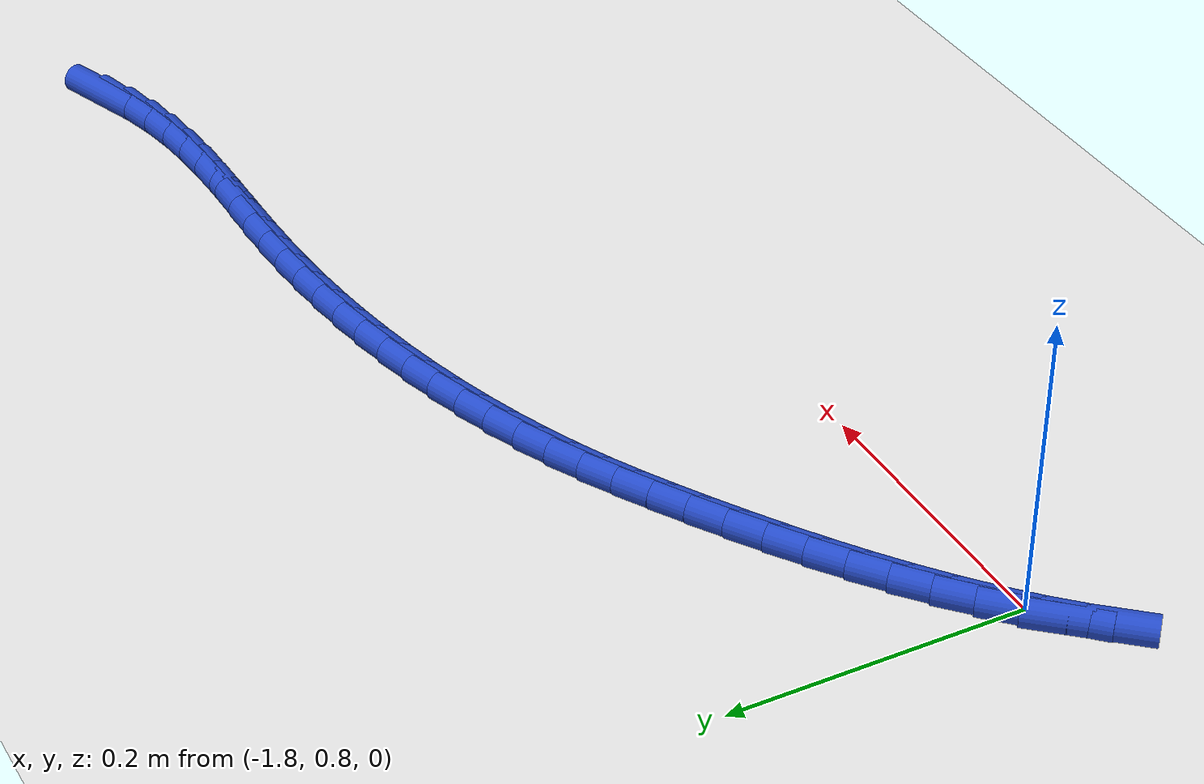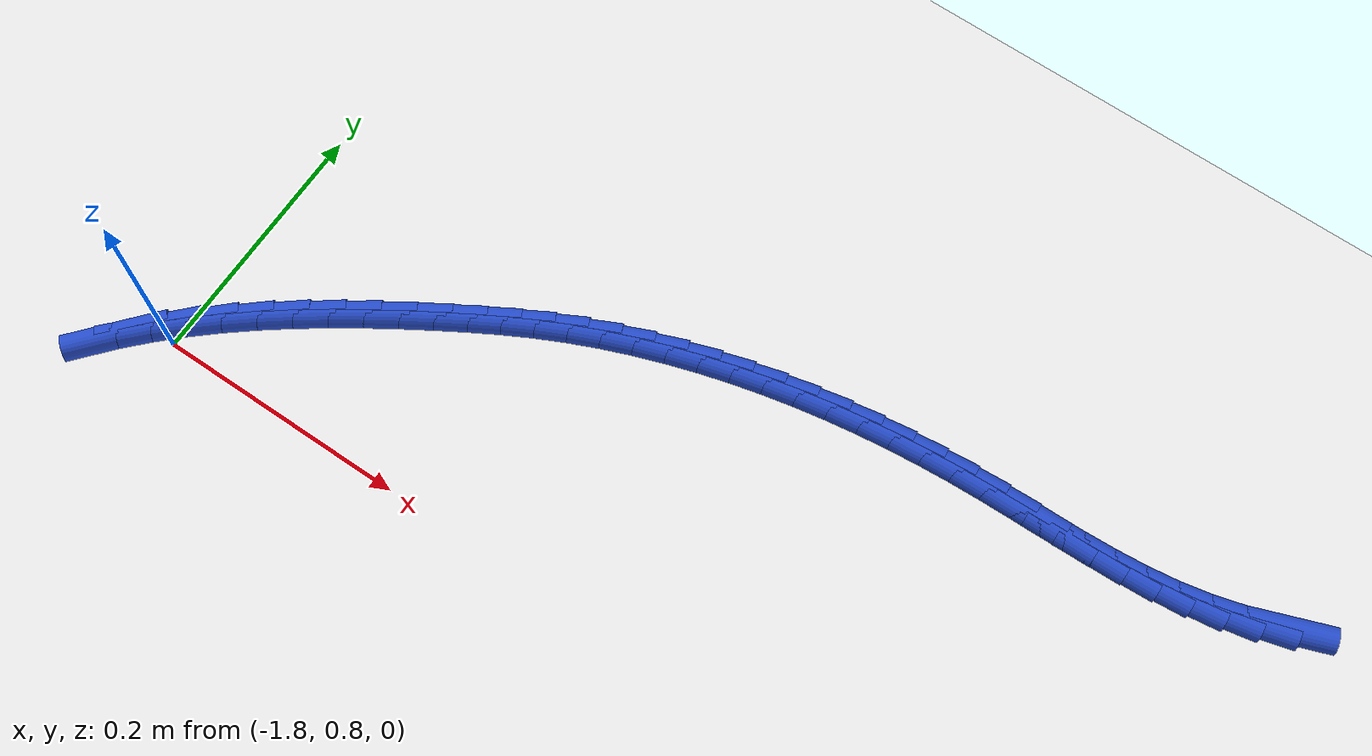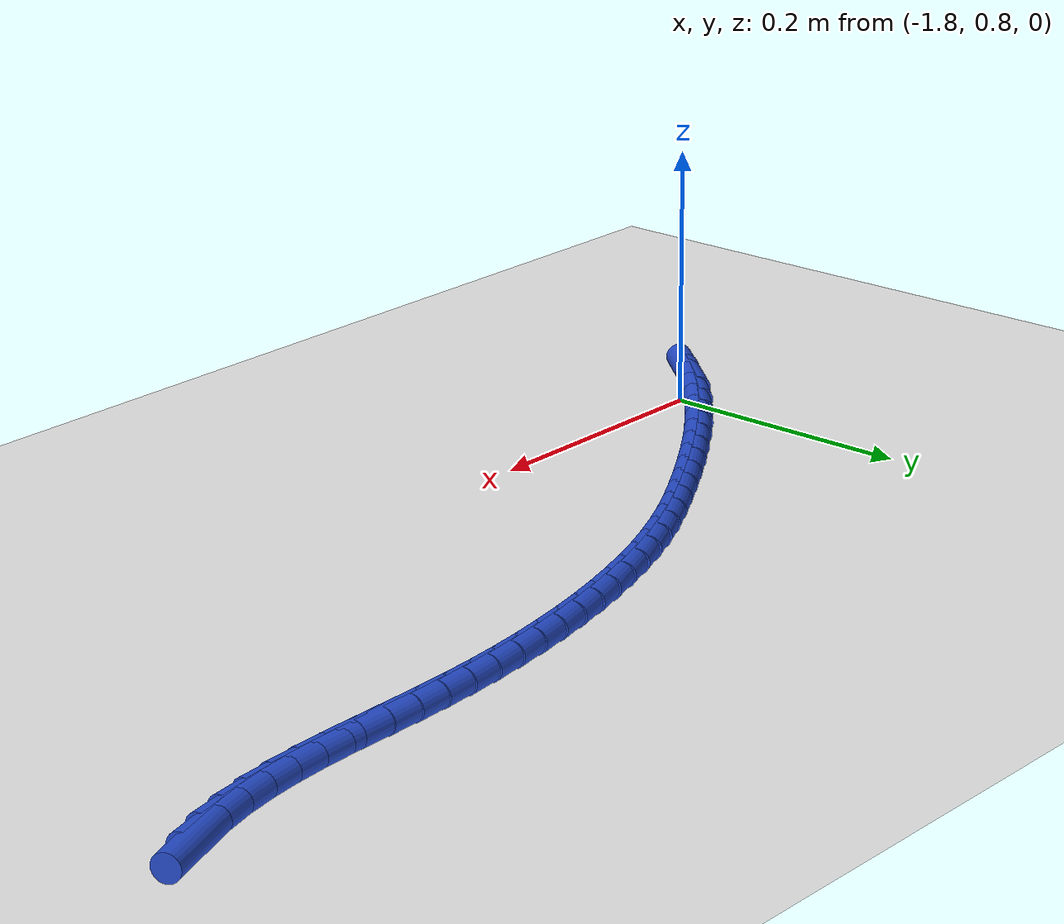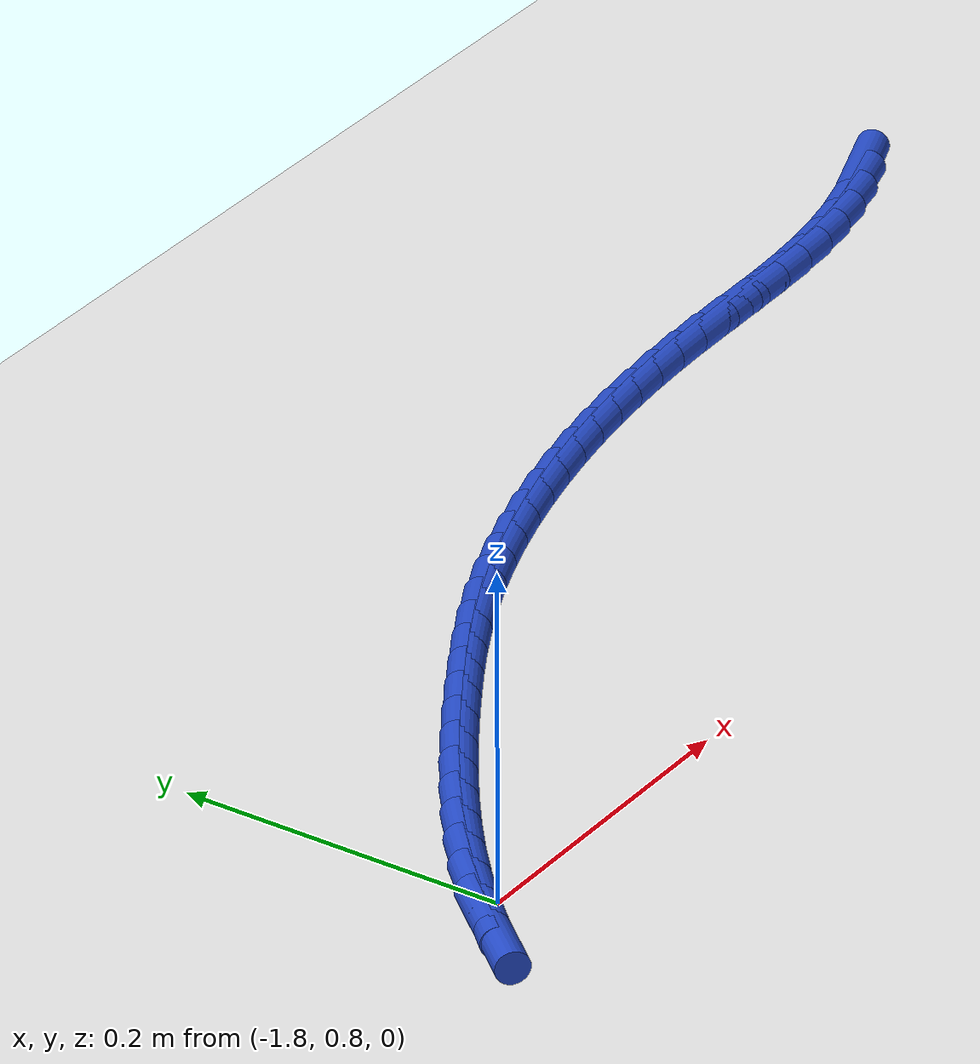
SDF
<sdf version="1.6">
 <world name="default">
  <model name="ground_plane">
   <static>1</static>
   <link name="link">
    <collision name="collision">
     <geometry><plane><normal>0 0 1</normal><size>100 100</size></plane></geometry>
     <surface><friction><ode><mu>100</mu><mu2>50</mu2></ode></friction></surface>
    </collision>
    <visual name="visual">
     <cast_shadows>0</cast_shadows>
     <geometry><plane><normal>0 0 1</normal><size>100 100</size></plane></geometry>
     <material>
      <script><uri>file://media/materials/scripts/gazebo.material</uri><name>Gazebo/WhiteGlow</name></script>
     </material>
    </visual>
   </link>
  </model>
  <model name="line">
   <link name="link_67">
    <pose>-1.0242489776325892 1.0688113468515177 0.01 0 1.57 0.3530320364232878</pose>
    <collision name="collision">
     <geometry><cylinder><radius>0.01</radius><length>0.08</length></cylinder></geometry>
    </collision>
    <visual name="visual">
     <material>
      <script><name>Gazebo/Blue</name><uri>file://media/materials/scripts/gazebo.material</uri></script>
     </material>
     <geometry><cylinder><radius>0.01</radius><length>0.08</length></cylinder></geometry>
    </visual>
   </link>
   <link name="link_68">
    <pose>-1.0485148059921094 1.0598701569910525 0.01 0 1.57 0.26759554136000435</pose>
    <collision name="collision">
     <geometry><cylinder><radius>0.01</radius><length>0.08</length></cylinder></geometry>
    </collision>
    <visual name="visual">
     <material>
      <script><name>Gazebo/Blue</name><uri>file://media/materials/scripts/gazebo.material</uri></script>
     </material>
     <geometry><cylinder><radius>0.01</radius><length>0.08</length></cylinder></geometry>
    </visual>
   </link>
   <link name="link_69">
    <pose>-1.0729217709770134 1.0531784695257589 0.01 0 1.57 0.19246781330782994</pose>
    <collision name="collision">
     <geometry><cylinder><radius>0.01</radius><length>0.08</length></cylinder></geometry>
    </collision>
    <visual name="visual">
     <material>
      <script><name>Gazebo/Blue</name><uri>file://media/materials/scripts/gazebo.material</uri></script>
     </material>
     <geometry><cylinder><radius>0.01</radius><length>0.08</length></cylinder></geometry>
    </visual>
   </link>
   <link name="link_70">
    <pose>-1.0974584515188963 1.0483967575897999 0.01 0 1.57 0.1296075258111395</pose>
    <collision name="collision">
     <geometry><cylinder><radius>0.01</radius><length>0.08</length></cylinder></geometry>
    </collision>
    <visual name="visual">
     <material>
      <script><name>Gazebo/Blue</name><uri>file://media/materials/scripts/gazebo.material</uri></script>
     </material>
     <geometry><cylinder><radius>0.01</radius><length>0.08</length></cylinder></geometry>
    </visual>
   </link>
   <link name="link_71">
    <pose>-1.122113596187889 1.0451832514974588 0.01 0 1.57 0.08007400746935366</pose>
    <collision name="collision">
     <geometry><cylinder><radius>0.01</radius><length>0.08</length></cylinder></geometry>
    </collision>
    <visual name="visual">
     <material>
      <script><name>Gazebo/Blue</name><uri>file://media/materials/scripts/gazebo.material</uri></script>
     </material>
     <geometry><cylinder><radius>0.01</radius><length>0.08</length></cylinder></geometry>
    </visual>
   </link>
   <link name="link_72">
    <pose>-1.146875953554125 1.0431961815630206 0.01 0 1.57 0.044318428447577295</pose>
    <collision name="collision">
     <geometry><cylinder><radius>0.01</radius><length>0.08</length></cylinder></geometry>
    </collision>
    <visual name="visual">
     <material>
      <script><name>Gazebo/Blue</name><uri>file://media/materials/scripts/gazebo.material</uri></script>
     </material>
     <geometry><cylinder><radius>0.01</radius><length>0.08</length></cylinder></geometry>
    </visual>
   </link>
   <link name="link_73">
    <pose>-1.1717342721877375 1.0420937781007695 0.01 0 1.57 0.022427623934136047</pose>
    <collision name="collision">
     <geometry><cylinder><radius>0.01</radius><length>0.08</length></cylinder></geometry>
    </collision>
    <visual name="visual">
     <material>
      <script><name>Gazebo/Blue</name><uri>file://media/materials/scripts/gazebo.material</uri></script>
     </material>
     <geometry><cylinder><radius>0.01</radius><length>0.08</length></cylinder></geometry>
    </visual>
   </link>
   <link name="link_74">
    <pose>-1.1966773006588576 1.0415342714249898 0.01 0 1.57 0.014324755647214705</pose>
    <collision name="collision">
     <geometry><cylinder><radius>0.01</radius><length>0.08</length></cylinder></geometry>
    </collision>
    <visual name="visual">
     <material>
      <script><name>Gazebo/Blue</name><uri>file://media/materials/scripts/gazebo.material</uri></script>
     </material>
     <geometry><cylinder><radius>0.01</radius><length>0.08</length></cylinder></geometry>
    </visual>
   </link>
   <link name="link_75">
    <pose>-1.2216937875376181 1.0411758918499658 0.01 0 1.57 0.01989562604277477</pose>
    <collision name="collision">
     <geometry><cylinder><radius>0.01</radius><length>0.08</length></cylinder></geometry>
    </collision>
    <visual name="visual">
     <material>
      <script><name>Gazebo/Blue</name><uri>file://media/materials/scripts/gazebo.material</uri></script>
     </material>
     <geometry><cylinder><radius>0.01</radius><length>0.08</length></cylinder></geometry>
    </visual>
   </link>
   <link name="link_76">
    <pose>-1.2467724813941523 1.0406768696899829 0.01 0 1.57 0.03883596168249597</pose>
    <collision name="collision">
     <geometry><cylinder><radius>0.01</radius><length>0.08</length></cylinder></geometry>
    </collision>
    <visual name="visual">
     <material>
      <script><name>Gazebo/Blue</name><uri>file://media/materials/scripts/gazebo.material</uri></script>
     </material>
     <geometry><cylinder><radius>0.01</radius><length>0.08</length></cylinder></geometry>
    </visual>
   </link>
   <link name="link_77">
    <pose>-1.2719016787282926 1.039700462212863 0.01 0 1.57 0.065244200546952</pose>
    <collision name="collision">
     <geometry><cylinder><radius>0.01</radius><length>0.08</length></cylinder></geometry>
    </collision>
    <visual name="visual">
     <material>
      <script><name>Gazebo/Blue</name><uri>file://media/materials/scripts/gazebo.material</uri></script>
     </material>
     <geometry><cylinder><radius>0.01</radius><length>0.08</length></cylinder></geometry>
    </visual>
   </link>
   <link name="link_78">
    <pose>-1.297056456487506 1.038056926114667 0.01 0 1.57 0.09255428253780851</pose>
    <collision name="collision">
     <geometry><cylinder><radius>0.01</radius><length>0.08</length></cylinder></geometry>
    </collision>
    <visual name="visual">
     <material>
      <script><name>Gazebo/Blue</name><uri>file://media/materials/scripts/gazebo.material</uri></script>
     </material>
     <geometry><cylinder><radius>0.01</radius><length>0.08</length></cylinder></geometry>
    </visual>
   </link>
   <link name="link_79">
    <pose>-1.3221968836090754 1.0357234049008235 0.01 0 1.57 0.120493697480449</pose>
    <collision name="collision">
     <geometry><cylinder><radius>0.01</radius><length>0.08</length></cylinder></geometry>
    </collision>
    <visual name="visual">
     <material>
      <script><name>Gazebo/Blue</name><uri>file://media/materials/scripts/gazebo.material</uri></script>
     </material>
     <geometry><cylinder><radius>0.01</radius><length>0.08</length></cylinder></geometry>
    </visual>
   </link>
   <link name="link_80">
    <pose>-1.3472822174621433 1.032686066592072 0.01 0 1.57 0.14914677674639065</pose>
    <collision name="collision">
     <geometry><cylinder><radius>0.01</radius><length>0.08</length></cylinder></geometry>
    </collision>
    <visual name="visual">
     <material>
      <script><name>Gazebo/Blue</name><uri>file://media/materials/scripts/gazebo.material</uri></script>
     </material>
     <geometry><cylinder><radius>0.01</radius><length>0.08</length></cylinder></geometry>
    </visual>
   </link>
   <link name="link_81">
    <pose>-1.3722717154158524 1.0289310792091553 0.01 0 1.57 0.17859733008699863</pose>
    <collision name="collision">
     <geometry><cylinder><radius>0.01</radius><length>0.08</length></cylinder></geometry>
    </collision>
    <visual name="visual">
     <material>
      <script><name>Gazebo/Blue</name><uri>file://media/materials/scripts/gazebo.material</uri></script>
     </material>
     <geometry><cylinder><radius>0.01</radius><length>0.08</length></cylinder></geometry>
    </visual>
   </link>
   <link name="link_82">
    <pose>-1.3971246348393451 1.0244446107728136 0.01 0 1.57 0.20892845728210982</pose>
    <collision name="collision">
     <geometry><cylinder><radius>0.01</radius><length>0.08</length></cylinder></geometry>
    </collision>
    <visual name="visual">
     <material>
      <script><name>Gazebo/Blue</name><uri>file://media/materials/scripts/gazebo.material</uri></script>
     </material>
     <geometry><cylinder><radius>0.01</radius><length>0.08</length></cylinder></geometry>
    </visual>
   </link>
   <link name="link_83">
    <pose>-1.4218002331017634 1.019212829303789 0.01 0 1.57 0.24022216380303857</pose>
    <collision name="collision">
     <geometry><cylinder><radius>0.01</radius><length>0.08</length></cylinder></geometry>
    </collision>
    <visual name="visual">
     <material>
      <script><name>Gazebo/Blue</name><uri>file://media/materials/scripts/gazebo.material</uri></script>
     </material>
     <geometry><cylinder><radius>0.01</radius><length>0.08</length></cylinder></geometry>
    </visual>
   </link>
   <link name="link_84">
    <pose>-1.4462577675722499 1.0132219028228222 0.01 0 1.57 0.27255875287332876</pose>
    <collision name="collision">
     <geometry><cylinder><radius>0.01</radius><length>0.08</length></cylinder></geometry>
    </collision>
    <visual name="visual">
     <material>
      <script><name>Gazebo/Blue</name><uri>file://media/materials/scripts/gazebo.material</uri></script>
     </material>
     <geometry><cylinder><radius>0.01</radius><length>0.08</length></cylinder></geometry>
    </visual>
   </link>
   <link name="link_85">
    <pose>-1.4704564956199473 1.0064579993506548 0.01 0 1.57 0.30601596391122354</pose>
    <collision name="collision">
     <geometry><cylinder><radius>0.01</radius><length>0.08</length></cylinder></geometry>
    </collision>
    <visual name="visual">
     <material>
      <script><name>Gazebo/Blue</name><uri>file://media/materials/scripts/gazebo.material</uri></script>
     </material>
     <geometry><cylinder><radius>0.01</radius><length>0.08</length></cylinder></geometry>
    </visual>
   </link>
   <link name="link_86">
    <pose>-1.4943556746139972 0.9989072869080279 0.01 0 1.57 0.34066782697875986</pose>
    <collision name="collision">
     <geometry><cylinder><radius>0.01</radius><length>0.08</length></cylinder></geometry>
    </collision>
    <visual name="visual">
     <material>
      <script><name>Gazebo/Blue</name><uri>file://media/materials/scripts/gazebo.material</uri></script>
     </material>
     <geometry><cylinder><radius>0.01</radius><length>0.08</length></cylinder></geometry>
    </visual>
   </link>
   <link name="link_87">
    <pose>-1.517914561923543 0.9905559335156828 0.01 0 1.57 0.3765832056010539</pose>
    <collision name="collision">
     <geometry><cylinder><radius>0.01</radius><length>0.08</length></cylinder></geometry>
    </collision>
    <visual name="visual">
     <material>
      <script><name>Gazebo/Blue</name><uri>file://media/materials/scripts/gazebo.material</uri></script>
     </material>
     <geometry><cylinder><radius>0.01</radius><length>0.08</length></cylinder></geometry>
    </visual>
   </link>
   <link name="link_88">
    <pose>-1.541092414917726 0.9813901071943609 0.01 0 1.57 0.41382400744406694</pose>
    <collision name="collision">
     <geometry><cylinder><radius>0.01</radius><length>0.08</length></cylinder></geometry>
    </collision>
    <visual name="visual">
     <material>
      <script><name>Gazebo/Blue</name><uri>file://media/materials/scripts/gazebo.material</uri></script>
     </material>
     <geometry><cylinder><radius>0.01</radius><length>0.08</length></cylinder></geometry>
    </visual>
   </link>
   <link name="link_89">
    <pose>-1.5638484909656893 0.9713959759648034 0.01 0 1.57 0.452442671573993</pose>
    <collision name="collision">
     <geometry><cylinder><radius>0.01</radius><length>0.08</length></cylinder></geometry>
    </collision>
    <visual name="visual">
     <material>
      <script><name>Gazebo/Blue</name><uri>file://media/materials/scripts/gazebo.material</uri></script>
     </material>
     <geometry><cylinder><radius>0.01</radius><length>0.08</length></cylinder></geometry>
    </visual>
   </link>
   <link name="link_90">
    <pose>-1.5861420589231503 0.960559712840651 0.01 0 1.57 0.49037964356268077</pose>
    <collision name="collision">
     <geometry><cylinder><radius>0.01</radius><length>0.08</length></cylinder></geometry>
    </collision>
    <visual name="visual">
     <material>
      <script><name>Gazebo/Blue</name><uri>file://media/materials/scripts/gazebo.material</uri></script>
     </material>
     <geometry><cylinder><radius>0.01</radius><length>0.08</length></cylinder></geometry>
    </visual>
   </link>
   <link name="link_91">
    <pose>-1.607993190667527 0.9488939202431832 0.01 0 1.57 0.5203199232895908</pose>
    <collision name="collision">
     <geometry><cylinder><radius>0.01</radius><length>0.08</length></cylinder></geometry>
    </collision>
    <visual name="visual">
     <material>
      <script><name>Gazebo/Blue</name><uri>file://media/materials/scripts/gazebo.material</uri></script>
     </material>
     <geometry><cylinder><radius>0.01</radius><length>0.08</length></cylinder></geometry>
    </visual>
   </link>
   <link name="link_92">
    <pose>-1.6296247257090606 0.9364993381281961 0.01 0 1.57 0.5404784085466252</pose>
    <collision name="collision">
     <geometry><cylinder><radius>0.01</radius><length>0.08</length></cylinder></geometry>
    </collision>
    <visual name="visual">
     <material>
      <script><name>Gazebo/Blue</name><uri>file://media/materials/scripts/gazebo.material</uri></script>
     </material>
     <geometry><cylinder><radius>0.01</radius><length>0.08</length></cylinder></geometry>
    </visual>
   </link>
   <link name="link_93">
    <pose>-1.651297771468421 0.9234937742696081 0.01 0 1.57 0.5560805837909018</pose>
    <collision name="collision">
     <geometry><cylinder><radius>0.01</radius><length>0.08</length></cylinder></geometry>
    </collision>
    <visual name="visual">
     <material>
      <script><name>Gazebo/Blue</name><uri>file://media/materials/scripts/gazebo.material</uri></script>
     </material>
     <geometry><cylinder><radius>0.01</radius><length>0.08</length></cylinder></geometry>
    </visual>
   </link>
   <link name="link_94">
    <pose>-1.673105201934726 0.909940393282847 0.01 0 1.57 0.5743489248065063</pose>
    <collision name="collision">
     <geometry><cylinder><radius>0.01</radius><length>0.08</length></cylinder></geometry>
    </collision>
    <visual name="visual">
     <material>
      <script><name>Gazebo/Blue</name><uri>file://media/materials/scripts/gazebo.material</uri></script>
     </material>
     <geometry><cylinder><radius>0.01</radius><length>0.08</length></cylinder></geometry>
    </visual>
   </link>
   <link name="link_95">
    <pose>-1.6949124203056014 0.8958284759993818 0.01 0 1.57 0.5959171966547092</pose>
    <collision name="collision">
     <geometry><cylinder><radius>0.01</radius><length>0.08</length></cylinder></geometry>
    </collision>
    <visual name="visual">
     <material>
      <script><name>Gazebo/Blue</name><uri>file://media/materials/scripts/gazebo.material</uri></script>
     </material>
     <geometry><cylinder><radius>0.01</radius><length>0.08</length></cylinder></geometry>
    </visual>
   </link>
   <link name="link_96">
    <pose>-1.7165686948278895 0.8811420625285205 0.01 0 1.57 0.620980414124688</pose>
    <collision name="collision">
     <geometry><cylinder><radius>0.01</radius><length>0.08</length></cylinder></geometry>
    </collision>
    <visual name="visual">
     <material>
      <script><name>Gazebo/Blue</name><uri>file://media/materials/scripts/gazebo.material</uri></script>
     </material>
     <geometry><cylinder><radius>0.01</radius><length>0.08</length></cylinder></geometry>
    </visual>
   </link>
   <link name="link_97">
    <pose>-1.7379232937484326 0.8658651929795711 0.01 0 1.57 0.6497982680244311</pose>
    <collision name="collision">
     <geometry><cylinder><radius>0.01</radius><length>0.08</length></cylinder></geometry>
    </collision>
    <visual name="visual">
     <material>
      <script><name>Gazebo/Blue</name><uri>file://media/materials/scripts/gazebo.material</uri></script>
     </material>
     <geometry><cylinder><radius>0.01</radius><length>0.08</length></cylinder></geometry>
    </visual>
   </link>
   <link name="link_98">
    <pose>-1.758825485314075 0.8499819074618424 0.01 0 1.57 0.6826927426990795</pose>
    <collision name="collision">
     <geometry><cylinder><radius>0.01</radius><length>0.08</length></cylinder></geometry>
    </collision>
    <visual name="visual">
     <material>
      <script><name>Gazebo/Blue</name><uri>file://media/materials/scripts/gazebo.material</uri></script>
     </material>
     <geometry><cylinder><radius>0.01</radius><length>0.08</length></cylinder></geometry>
    </visual>
   </link>
   <link name="link_99">
    <pose>-1.779124537771659 0.8334762460846427 0.01 0 1.57 0.7200446986423671</pose>
    <collision name="collision">
     <geometry><cylinder><radius>0.01</radius><length>0.08</length></cylinder></geometry>
    </collision>
    <visual name="visual">
     <material>
      <script><name>Gazebo/Blue</name><uri>file://media/materials/scripts/gazebo.material</uri></script>
     </material>
     <geometry><cylinder><radius>0.01</radius><length>0.08</length></cylinder></geometry>
    </visual>
   </link>
   <link name="link_100">
    <pose>-1.7986697193680274 0.8163322489572791 0.01 0 1.57 0.7622872324405334</pose>
    <collision name="collision">
     <geometry><cylinder><radius>0.01</radius><length>0.08</length></cylinder></geometry>
    </collision>
    <visual name="visual">
     <material>
      <script><name>Gazebo/Blue</name><uri>file://media/materials/scripts/gazebo.material</uri></script>
     </material>
     <geometry><cylinder><radius>0.01</radius><length>0.08</length></cylinder></geometry>
    </visual>
   </link>
   <link name="link_101">
    <pose>-1.8173102983500227 0.798533956189061 0.01 0 1.57 0.8098928683615563</pose>
    <collision name="collision">
     <geometry><cylinder><radius>0.01</radius><length>0.08</length></cylinder></geometry>
    </collision>
    <visual name="visual">
     <material>
      <script><name>Gazebo/Blue</name><uri>file://media/materials/scripts/gazebo.material</uri></script>
     </material>
     <geometry><cylinder><radius>0.01</radius><length>0.08</length></cylinder></geometry>
    </visual>
   </link>
   <link name="link_102">
    <pose>-1.8348955429644886 0.7800654078892963 0.01 0 1.57 0.8633506994298243</pose>
    <collision name="collision">
     <geometry><cylinder><radius>0.01</radius><length>0.08</length></cylinder></geometry>
    </collision>
    <visual name="visual">
     <material>
      <script><name>Gazebo/Blue</name><uri>file://media/materials/scripts/gazebo.material</uri></script>
     </material>
     <geometry><cylinder><radius>0.01</radius><length>0.08</length></cylinder></geometry>
    </visual>
   </link>
  </model>
 </world>
</sdf>
